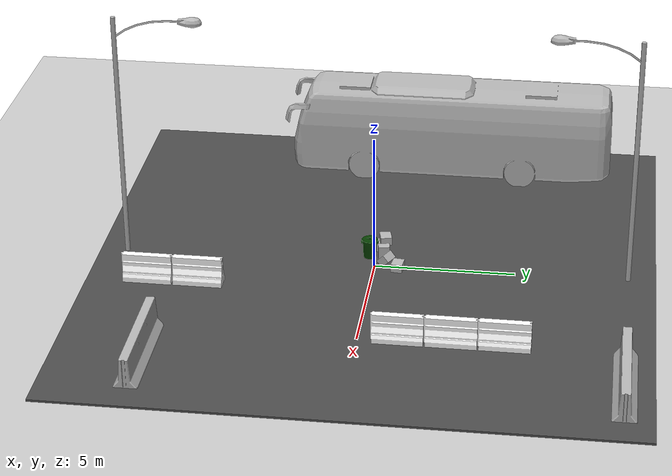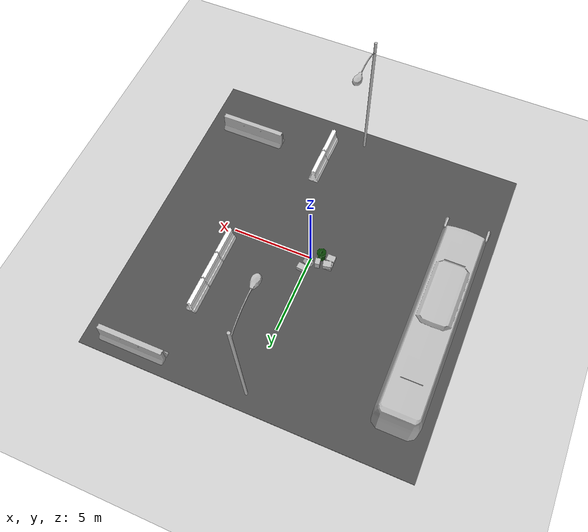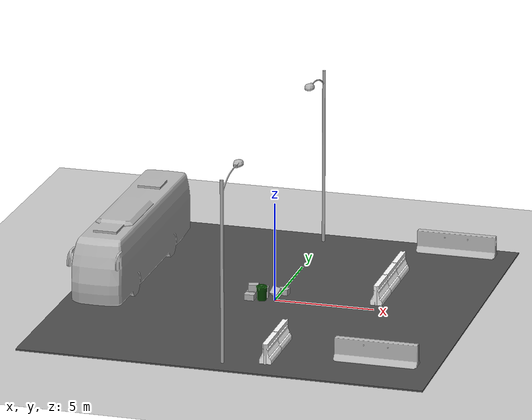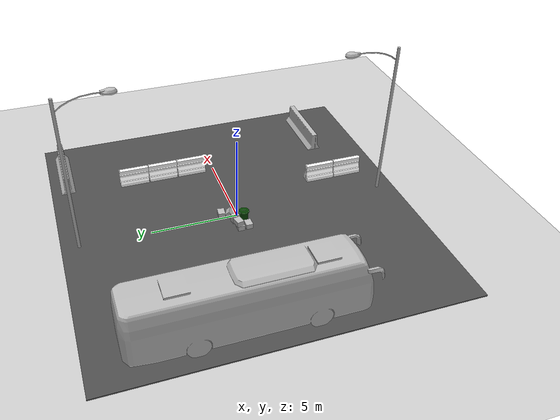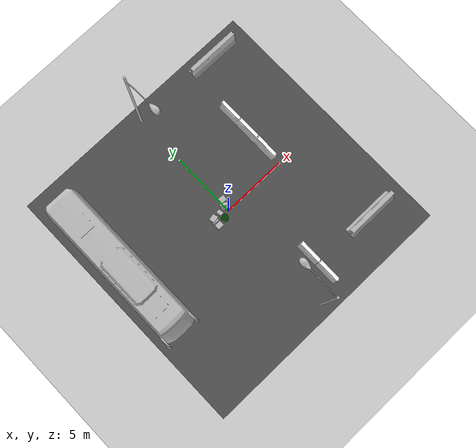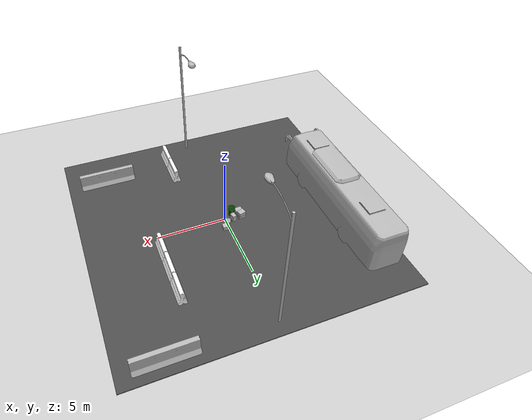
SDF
<sdf version="1.7">
 <world name="default">
  <light name="sun" type="directional">
   <pose>0 0 10 0 -0 0</pose>
   <diffuse>0.8 0.8 0.8 1</diffuse>
   <specular>0.2 0.2 0.2 1</specular>
   <attenuation>
    <range>1000</range>
    <constant>0.9</constant>
    <linear>0.01</linear>
    <quadratic>0.001</quadratic>
   </attenuation>
   <direction>-0.5 0.1 -0.9</direction>
   <spot><inner_angle>0</inner_angle><outer_angle>0</outer_angle><falloff>0</falloff></spot>
  </light>
  <model name="ground_plane">
   <static>1</static>
   <link name="link">
    <collision name="collision">
     <geometry><plane><normal>0 0 1</normal><size>100 100</size></plane></geometry>
     <surface>
      <contact><collide_bitmask>65535</collide_bitmask></contact>
      <friction><ode><mu>100</mu><mu2>50</mu2></ode></friction>
     </surface>
    </collision>
    <visual name="visual">
     <cast_shadows>0</cast_shadows>
     <geometry><plane><normal>0 0 1</normal><size>100 100</size></plane></geometry>
     <material>
      <script><uri>file://media/materials/scripts/gazebo.material</uri><name>Gazebo/Grey</name></script>
     </material>
    </visual>
   </link>
  </model>
  <gravity>0 0 -9.8</gravity>
  <magnetic_field>6e-06 2.3e-05 -4.2e-05</magnetic_field>
  <atmosphere type="adiabatic"/>
  <physics type="ode">
   <max_step_size>0.001</max_step_size>
   <real_time_factor>1</real_time_factor>
   <real_time_update_rate>1000</real_time_update_rate>
  </physics>
  <scene><ambient>0.4 0.4 0.4 1</ambient><background>0.7 0.7 0.7 1</background><shadows>1</shadows></scene>
  <spherical_coordinates>
   <surface_model>EARTH_WGS84</surface_model>
   <latitude_deg>0</latitude_deg>
   <longitude_deg>0</longitude_deg>
   <elevation>0</elevation>
   <heading_deg>0</heading_deg>
  </spherical_coordinates>
  <model name="asphalt_plane">
   <static>1</static>
   <link name="link">
    <collision name="collision"><geometry><box><size>20 20 0.1</size></box></geometry></collision>
    <visual name="visual">
     <cast_shadows>0</cast_shadows>
     <geometry><box><size>20 20 0.1</size></box></geometry>
     <material>
      <script>
       <uri>model://asphalt_plane/materials/scripts</uri>
       <uri>model://asphalt_plane/materials/textures</uri>
       <name>vrc/asphalt</name>
      </script>
     </material>
    </visual>
   </link>
  </model>
  <model name="jersey_barrier">
   <static>1</static>
   <link name="link">
    <visual name="visual">
     <geometry><mesh><uri>model://jersey_barrier/meshes/jersey_barrier.dae</uri></mesh></geometry>
    </visual>
    <collision name="upright">
     <pose>0 0 0.5715 0 -0 0</pose>
     <geometry><box><size>4.06542 0.3063 1.143</size></box></geometry>
    </collision>
    <collision name="base">
     <pose>0 0 0.032258 0 -0 0</pose>
     <geometry><box><size>4.06542 0.8107 0.064516</size></box></geometry>
    </collision>
    <collision name="base2">
     <pose>0 0 0.1 0 -0 0</pose>
     <geometry><box><size>4.06542 0.65 0.1</size></box></geometry>
    </collision>
    <collision name="base3">
     <pose>0 0 0.2 0 -0 0</pose>
     <geometry><box><size>4.06542 0.5 0.1</size></box></geometry>
    </collision>
    <collision name="left-angle">
     <pose>0 -0.224 0.2401 0.9 -0 0</pose>
     <geometry><box><size>4.06542 0.5 0.064516</size></box></geometry>
    </collision>
    <collision name="right-angle">
     <pose>0 0.224 0.2401 -0.9 0 0</pose>
     <geometry><box><size>4.06542 0.5 0.064516</size></box></geometry>
    </collision>
   </link>
   <pose>7 -7 0 0 -0 0</pose>
  </model>
  <model name="Lamp Post">
   <static>1</static>
   <link name="link">
    <collision name="collision">
     <geometry><mesh><uri>model://lamp_post/meshes/lamp_post.dae</uri><scale>3 3 3</scale></mesh></geometry>
    </collision>
    <visual name="visual">
     <geometry><mesh><uri>model://lamp_post/meshes/lamp_post.dae</uri><scale>3 3 3</scale></mesh></geometry>
    </visual>
   </link>
   <pose>0 9 0 0 -0 0</pose>
  </model>
  <model name="jersey_barrier_1">
   <static>1</static>
   <link name="link">
    <visual name="visual">
     <geometry><mesh><uri>model://jersey_barrier/meshes/jersey_barrier.dae</uri></mesh></geometry>
    </visual>
    <collision name="upright">
     <pose>0 0 0.5715 0 -0 0</pose>
     <geometry><box><size>4.06542 0.3063 1.143</size></box></geometry>
    </collision>
    <collision name="base">
     <pose>0 0 0.032258 0 -0 0</pose>
     <geometry><box><size>4.06542 0.8107 0.064516</size></box></geometry>
    </collision>
    <collision name="base2">
     <pose>0 0 0.1 0 -0 0</pose>
     <geometry><box><size>4.06542 0.65 0.1</size></box></geometry>
    </collision>
    <collision name="base3">
     <pose>0 0 0.2 0 -0 0</pose>
     <geometry><box><size>4.06542 0.5 0.1</size></box></geometry>
    </collision>
    <collision name="left-angle">
     <pose>0 -0.224 0.2401 0.9 -0 0</pose>
     <geometry><box><size>4.06542 0.5 0.064516</size></box></geometry>
    </collision>
    <collision name="right-angle">
     <pose>0 0.224 0.2401 -0.9 0 0</pose>
     <geometry><box><size>4.06542 0.5 0.064516</size></box></geometry>
    </collision>
   </link>
   <pose>7 9 0 0 -0 0</pose>
  </model>
  <model name="bus">
   <static>1</static>
   <link name="link">
    <collision name="collision">
     <geometry><mesh><scale>0.01 0.01 0.01</scale><uri>model://bus/meshes/bus.obj</uri></mesh></geometry>
    </collision>
    <visual name="visual">
     <geometry><mesh><scale>0.01 0.01 0.01</scale><uri>model://bus/meshes/bus.obj</uri></mesh></geometry>
    </visual>
   </link>
   <pose>-8 2 0 0 -0 0</pose>
  </model>
  <model name="cardboard_box">
   <pose>0.229235 0.860298 0.199 3.14159 0 -0.113984</pose>
   <link name="link">
    <inertial>
     <mass>2</mass>
     <inertia>
      <ixx>0.0416667</ixx>
      <ixy>0</ixy>
      <ixz>0</ixz>
      <iyy>0.0566667</iyy>
      <iyz>0</iyz>
      <izz>0.0683333</izz>
     </inertia>
    </inertial>
    <collision name="collision">
     <geometry><box><size>0.5 0.4 0.3</size></box></geometry>
     <surface>
      <friction><ode><mu>1</mu><mu2>1</mu2></ode></friction>
      <contact><ode><kp>1e+07</kp><kd>1</kd><min_depth>0.001</min_depth><max_vel>0.1</max_vel></ode></contact>
     </surface>
    </collision>
    <visual name="visual">
     <pose>0 0 -0.15 0 -0 0</pose>
     <geometry>
      <mesh><uri>model://cardboard_box/meshes/cardboard_box.dae</uri><scale>1.25932 1.00745 0.755591</scale></mesh>
     </geometry>
    </visual>
   </link>
  </model>
  <model name="cardboard_box_0">
   <pose>-1.16251 0.26313 0.497998 -3e-06 1e-06 0.227112</pose>
   <link name="link">
    <inertial>
     <mass>2</mass>
     <inertia>
      <ixx>0.0416667</ixx>
      <ixy>0</ixy>
      <ixz>0</ixz>
      <iyy>0.0566667</iyy>
      <iyz>0</iyz>
      <izz>0.0683333</izz>
     </inertia>
    </inertial>
    <collision name="collision">
     <geometry><box><size>0.5 0.4 0.3</size></box></geometry>
     <surface>
      <friction><ode><mu>1</mu><mu2>1</mu2></ode></friction>
      <contact><ode><kp>1e+07</kp><kd>1</kd><min_depth>0.001</min_depth><max_vel>0.1</max_vel></ode></contact>
     </surface>
    </collision>
    <visual name="visual">
     <pose>0 0 -0.15 0 -0 0</pose>
     <geometry>
      <mesh><uri>model://cardboard_box/meshes/cardboard_box.dae</uri><scale>1.25932 1.00745 0.755591</scale></mesh>
     </geometry>
    </visual>
   </link>
  </model>
  <model name="cardboard_box_1">
   <pose>-0.032374 0.412112 0.297415 -2.32692 0 -0.455879</pose>
   <link name="link">
    <inertial>
     <mass>2</mass>
     <inertia>
      <ixx>0.0416667</ixx>
      <ixy>0</ixy>
      <ixz>0</ixz>
      <iyy>0.0566667</iyy>
      <iyz>0</iyz>
      <izz>0.0683333</izz>
     </inertia>
    </inertial>
    <collision name="collision">
     <geometry><box><size>0.5 0.4 0.3</size></box></geometry>
     <surface>
      <friction><ode><mu>1</mu><mu2>1</mu2></ode></friction>
      <contact><ode><kp>1e+07</kp><kd>1</kd><min_depth>0.001</min_depth><max_vel>0.1</max_vel></ode></contact>
     </surface>
    </collision>
    <visual name="visual">
     <pose>0 0 -0.15 0 -0 0</pose>
     <geometry>
      <mesh><uri>model://cardboard_box/meshes/cardboard_box.dae</uri><scale>1.25932 1.00745 0.755591</scale></mesh>
     </geometry>
    </visual>
   </link>
  </model>
  <model name="cardboard_box_2">
   <pose>-0.554213 0.270895 0.299 0.181423 -1.57079 3.14159</pose>
   <link name="link">
    <inertial>
     <mass>2</mass>
     <inertia>
      <ixx>0.0416667</ixx>
      <ixy>0</ixy>
      <ixz>0</ixz>
      <iyy>0.0566667</iyy>
      <iyz>0</iyz>
      <izz>0.0683333</izz>
     </inertia>
    </inertial>
    <collision name="collision">
     <geometry><box><size>0.5 0.4 0.3</size></box></geometry>
     <surface>
      <friction><ode><mu>1</mu><mu2>1</mu2></ode></friction>
      <contact><ode><kp>1e+07</kp><kd>1</kd><min_depth>0.001</min_depth><max_vel>0.1</max_vel></ode></contact>
     </surface>
    </collision>
    <visual name="visual">
     <pose>0 0 -0.15 0 -0 0</pose>
     <geometry>
      <mesh><uri>model://cardboard_box/meshes/cardboard_box.dae</uri><scale>1.25932 1.00745 0.755591</scale></mesh>
     </geometry>
    </visual>
   </link>
  </model>
  <model name="cardboard_box_3">
   <pose>-1.19484 0.162889 0.198999 -1e-06 -0 0.001284</pose>
   <link name="link">
    <inertial>
     <mass>2</mass>
     <inertia>
      <ixx>0.0416667</ixx>
      <ixy>0</ixy>
      <ixz>0</ixz>
      <iyy>0.0566667</iyy>
      <iyz>0</iyz>
      <izz>0.0683333</izz>
     </inertia>
    </inertial>
    <collision name="collision">
     <geometry><box><size>0.5 0.4 0.3</size></box></geometry>
     <surface>
      <friction><ode><mu>1</mu><mu2>1</mu2></ode></friction>
      <contact><ode><kp>1e+07</kp><kd>1</kd><min_depth>0.001</min_depth><max_vel>0.1</max_vel></ode></contact>
     </surface>
    </collision>
    <visual name="visual">
     <pose>0 0 -0.15 0 -0 0</pose>
     <geometry>
      <mesh><uri>model://cardboard_box/meshes/cardboard_box.dae</uri><scale>1.25932 1.00745 0.755591</scale></mesh>
     </geometry>
    </visual>
   </link>
  </model>
  <model name="cardboard_box_4">
   <pose>-1.18354 -0.316976 0.199 0 -0 0</pose>
   <link name="link">
    <inertial>
     <mass>2</mass>
     <inertia>
      <ixx>0.0416667</ixx>
      <ixy>0</ixy>
      <ixz>0</ixz>
      <iyy>0.0566667</iyy>
      <iyz>0</iyz>
      <izz>0.0683333</izz>
     </inertia>
    </inertial>
    <collision name="collision">
     <geometry><box><size>0.5 0.4 0.3</size></box></geometry>
     <surface>
      <friction><ode><mu>1</mu><mu2>1</mu2></ode></friction>
      <contact><ode><kp>1e+07</kp><kd>1</kd><min_depth>0.001</min_depth><max_vel>0.1</max_vel></ode></contact>
     </surface>
    </collision>
    <visual name="visual">
     <pose>0 0 -0.15 0 -0 0</pose>
     <geometry>
      <mesh><uri>model://cardboard_box/meshes/cardboard_box.dae</uri><scale>1.25932 1.00745 0.755591</scale></mesh>
     </geometry>
    </visual>
   </link>
  </model>
  <model name="drc_practice_white_jersey_barrier">
   <static>1</static>
   <link name="link">
    <visual name="visual">
     <geometry>
      <mesh><uri>model://drc_practice_white_jersey_barrier/meshes/jersey_barrier.dae</uri></mesh>
     </geometry>
    </visual>
    <collision name="collision">
     <geometry>
      <mesh><uri>model://drc_practice_white_jersey_barrier/meshes/jersey_barrier.dae</uri></mesh>
     </geometry>
    </collision>
   </link>
   <pose>5 5 0 0 -0 0</pose>
  </model>
  <model name="drc_practice_white_jersey_barrier_0">
   <static>1</static>
   <link name="link">
    <visual name="visual">
     <geometry>
      <mesh><uri>model://drc_practice_white_jersey_barrier/meshes/jersey_barrier.dae</uri></mesh>
     </geometry>
    </visual>
    <collision name="collision">
     <geometry>
      <mesh><uri>model://drc_practice_white_jersey_barrier/meshes/jersey_barrier.dae</uri></mesh>
     </geometry>
    </collision>
   </link>
   <pose>5 3.2 0 0 -0 0</pose>
  </model>
  <model name="drc_practice_white_jersey_barrier_1">
   <static>1</static>
   <link name="link">
    <visual name="visual">
     <geometry>
      <mesh><uri>model://drc_practice_white_jersey_barrier/meshes/jersey_barrier.dae</uri></mesh>
     </geometry>
    </visual>
    <collision name="collision">
     <geometry>
      <mesh><uri>model://drc_practice_white_jersey_barrier/meshes/jersey_barrier.dae</uri></mesh>
     </geometry>
    </collision>
   </link>
   <pose>5 1.4 0 0 -0 0</pose>
  </model>
  <model name="drc_practice_white_jersey_barrier_2">
   <static>1</static>
   <link name="link">
    <visual name="visual">
     <geometry>
      <mesh><uri>model://drc_practice_white_jersey_barrier/meshes/jersey_barrier.dae</uri></mesh>
     </geometry>
    </visual>
    <collision name="collision">
     <geometry>
      <mesh><uri>model://drc_practice_white_jersey_barrier/meshes/jersey_barrier.dae</uri></mesh>
     </geometry>
    </collision>
   </link>
   <pose>2 -7.8 0 0 -0 0</pose>
  </model>
  <model name="drc_practice_white_jersey_barrier_3">
   <static>1</static>
   <link name="link">
    <visual name="visual">
     <geometry>
      <mesh><uri>model://drc_practice_white_jersey_barrier/meshes/jersey_barrier.dae</uri></mesh>
     </geometry>
    </visual>
    <collision name="collision">
     <geometry>
      <mesh><uri>model://drc_practice_white_jersey_barrier/meshes/jersey_barrier.dae</uri></mesh>
     </geometry>
    </collision>
   </link>
   <pose>2 -6 0 0 -0 0</pose>
  </model>
  <model name="first_2015_trash_can">
   <link name="link">
    <inertial>
     <pose>0 0 0.3683 0 -0 0</pose>
     <mass>4.83076</mass>
     <inertia>
      <ixx>0.281534</ixx>
      <ixy>0</ixy>
      <ixz>0</ixz>
      <iyy>0.281534</iyy>
      <iyz>0</iyz>
      <izz>0.126223</izz>
     </inertia>
    </inertial>
    <visual name="visual">
     <geometry><mesh><uri>model://first_2015_trash_can/meshes/trash_can.dae</uri></mesh></geometry>
    </visual>
    <collision name="collision">
     <geometry><mesh><uri>model://first_2015_trash_can/meshes/trash_can.dae</uri></mesh></geometry>
    </collision>
   </link>
   <pose>-0.590869 -0.244626 0.049998 -1.2e-05 1.2e-05 -0.008987</pose>
  </model>
  <model name="Lamp Post_0">
   <static>1</static>
   <link name="link">
    <collision name="collision">
     <geometry><mesh><uri>model://lamp_post/meshes/lamp_post.dae</uri><scale>3 3 3</scale></mesh></geometry>
    </collision>
    <visual name="visual">
     <geometry><mesh><uri>model://lamp_post/meshes/lamp_post.dae</uri><scale>3 3 3</scale></mesh></geometry>
    </visual>
   </link>
   <pose>0 -9 0 0 -0 3.14</pose>
  </model>
 </world>
</sdf>
